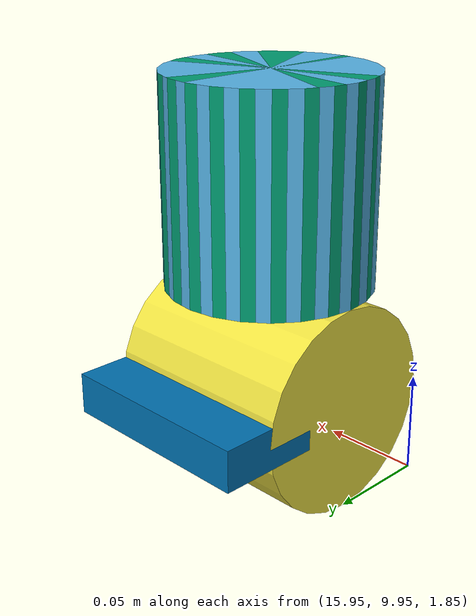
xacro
<?xml version="1.0"?>

<robot name="ptz_camera" xmlns:xacro="http://ros.org/wiki/xacro">
	<xacro:property name="M_PI" value="3.14159"/>
	<xacro:property name="pan_link_radius" value="0.05" />
	<xacro:property name="pan_link_len" value="0.10" />
	<xacro:property name="tilt_link_radius" value="0.05" />
	<xacro:property name="tilt_link_len" value="0.10" />

	<xacro:macro name="transmission_block" params="joint_name">
	  <transmission name="${joint_name}_tran">
	    <type>transmission_interface/SimpleTransmission</type>
	    <joint name="${joint_name}">
	      <hardwareInterface>hardware_interface/PositionJointInterface</hardwareInterface>
	    </joint>
	    <actuator name="${joint_name}_motor">
	      <hardwareInterface>hardware_interface/PositionJointInterface</hardwareInterface>
          <mechanicalReduction>1</mechanicalReduction>
        </actuator>
	  </transmission>
	</xacro:macro>

	<link name="world" />

	<joint name="fixed" type="fixed">
		<origin xyz="16.0 10.0 2.0" rpy="0 -3.14 1.57" />
    	<parent link="world"/>
    	<child link="base_link"/>
  	</joint>

	<link name="base_link">
		<visual>
			<geometry>
				<cylinder length="0.10" radius="0.05" />
			</geometry>
			<origin xpy="0 0 0" rpy="0 0 0" />
			<color rgba="0 1 0 1" />
		</visual>
		<collision>
			<geometry>
				<cylinder length="0.10" radius="0.05" />
			</geometry>
			<origin xpy="0 0 0" rpy="0 0 0" />
		</collision>
		<inertial>
      		<origin xyz="0 0 0" />
      		<mass value="0.01" />
      		<inertia  ixx="0.01" ixy="0.0"  ixz="0.0"  iyy="0.01"  iyz="0.0"  izz="0.01" />
   		</inertial>
	</link>

	<joint name="pan" type="revolute" >
		<parent link="base_link" />
		<child link="pan_link" />
		<origin xyz ="0 0 0" rpy="0 0 3.14" />
		<axis 	xyz ="0 0 1" />
		<limit effort="300" velocity= "1.5" lower="-3.14" upper="3.14" />
		<dynamics damping ="50" friction="1"/>
	</joint>

	<link name="pan_link">
		<visual>
			<geometry>
				<cylinder length="${pan_link_len}" radius="${pan_link_radius}" />
			</geometry>
			<origin xpy="0 0 0.05" rpy="0 0 0" />
		</visual>
		<collision>
			<geometry>
				<cylinder length="${pan_link_len}" radius="${pan_link_radius}" />
			</geometry>
			<origin xpy="0 0 0" rpy="0 0 0" />
			<color rgba="1 0 0 1" />
		</collision>
		<inertial>
      		<origin xyz="0 0 0" />
      		<mass value="0.01" />
      		<inertia  ixx="0.01" ixy="0.0"  ixz="0.0"  iyy="0.01"  iyz="0.0"  izz="0.01" />
   		</inertial>
	</link>

	<joint name="tilt" type="revolute" >
		<parent link="pan_link" />
		<child link="tilt_link" />
		<origin xyz ="0 0 0.1" />
		<axis 	xyz ="0 1 0" />
		<limit effort="300" velocity= "1.5" lower="-3.14" upper="3.14" />
		<dynamics damping ="50" friction="1"/>
	</joint>

	<link name="tilt_link">
		<visual>
			<geometry>
				<cylinder length="${tilt_link_len}" radius="${tilt_link_radius}" />
			</geometry>
			<origin xpy="0 0 0" rpy="1.57 0 0" />
			<color rgba="0 0 1 1" />
		</visual>
		<collision>
			<geometry>
				<cylinder length="${tilt_link_len}" radius="${tilt_link_radius}" />
			</geometry>
			<origin xpy="0 0 0" rpy="0 0 0" />
		</collision>
		<inertial>
      		<origin xyz="0 0 0" />
      		<mass value="0.01" />
      		<inertia  ixx="0.01" ixy="0.0"  ixz="0.0"  iyy="0.01"  iyz="0.0"  izz="0.01" />
   		</inertial>
	</link>

	<joint name="camera_joint" type="fixed">
		<parent link="tilt_link" />
		<child link="camera_link" />
		<origin xyz="0.05 0 0" rpy="0 3.14 0" />
	</joint>

	<link name="camera_link">
		<visual>
			<geometry>
				<box  size="0.05 0.1 0.02" />
			</geometry>
			<origin xpy="0 0 0" rpy="0 0 0" />
			<color rgba="0.5 0.5 0.5 1" />
		</visual>
		<collision>
			<geometry>
				<box  size="0.1 0.2 0.05" />
			</geometry>
			<origin xpy="0 0 0" rpy="0 0 0" />
		</collision>
		<inertial>
      		<origin xyz="0 0 0" />
      		<mass value="0.01" />
      		<inertia  ixx="0.01" ixy="0.0"  ixz="0.0"  iyy="0.01"  iyz="0.0"  izz="0.01" />
   		</inertial>
	</link>
  <xacro:transmission_block joint_name="pan"/>
  <xacro:transmission_block joint_name="tilt"/>

 <!-- ros_control plugin -->
	<gazebo>
		<plugin name="gazebo_ros_control" filename="libgazebo_ros_control.so">
		  <robotNamespace>/ptz_camera</robotNamespace>
		</plugin>
	</gazebo>

	<gazebo reference="camera_link">
    	<sensor name="_camera_raw" type="camera">
			<update_rate>25</update_rate>
		 	<camera name="pan_tilt_cam">
		  		<horizontal_fov>1.06</horizontal_fov>
				<vertical_fov>0.649</vertical_fov>
		    	<image>
		     		<width>1920</width>
		      		<height>1080</height>
		      		<format>B8G8R8</format>
		    	</image>
		    	<clip>
		      		<near>0.02</near>
		      		<far>300</far>
	    		</clip>
		    	<noise>
		      		<type>gaussian</type>
					<mean>0.0</mean>
					<stddev>0.008</stddev>
				</noise>
		  	</camera>
		  	<plugin filename="libgazebo_ros_camera.so" name="_camera_raw_controller">
		    	<robotNamespace></robotNamespace>
		    	<alwaysOn>true</alwaysOn>
		    	<updateRate>30</updateRate>
		    	<cameraName>camera_raw</cameraName>
		    	<imageTopicName>image_raw</imageTopicName>
		    	<cameraInfoTopicName>camera_info</cameraInfoTopicName>
		    	<frameName>/camera_raw_link</frameName>
		    	<hackBaseline>0.0</hackBaseline>
		    	<distortionK1>0.0</distortionK1>
		    	<distortionK2>0.0</distortionK2>
		    	<distortionK3>0.0</distortionK3>
		    	<distortionT1>0.0</distortionT1>
		    	<distortionT2>0.0</distortionT2>
		  	</plugin>
		</sensor>
  	</gazebo>

</robot>
